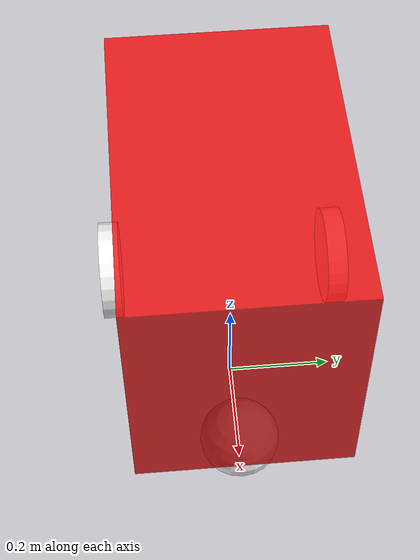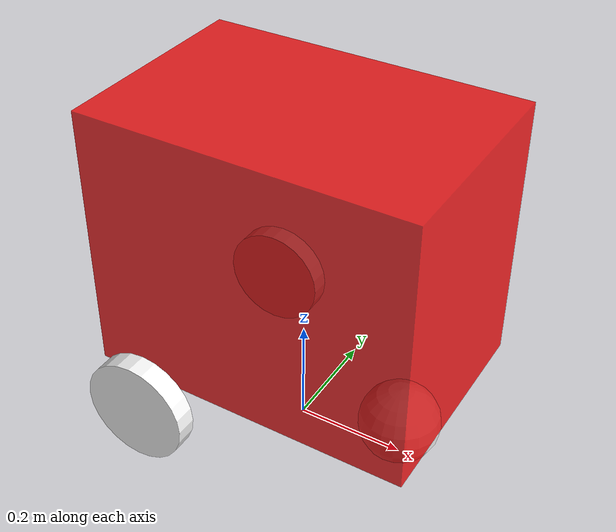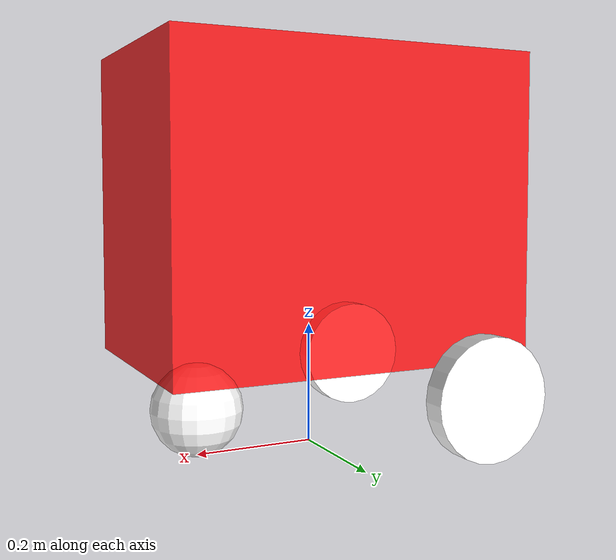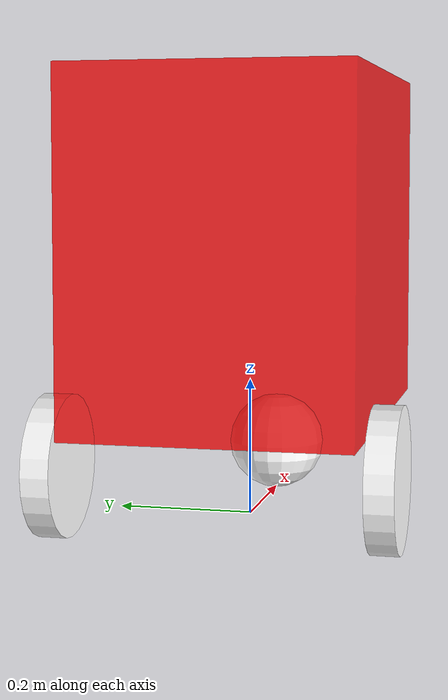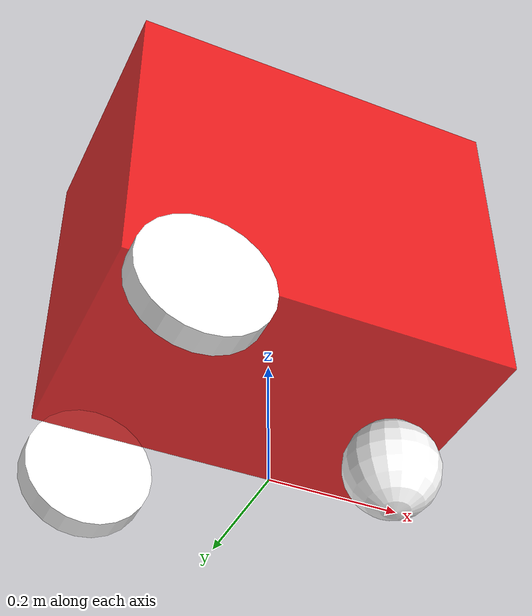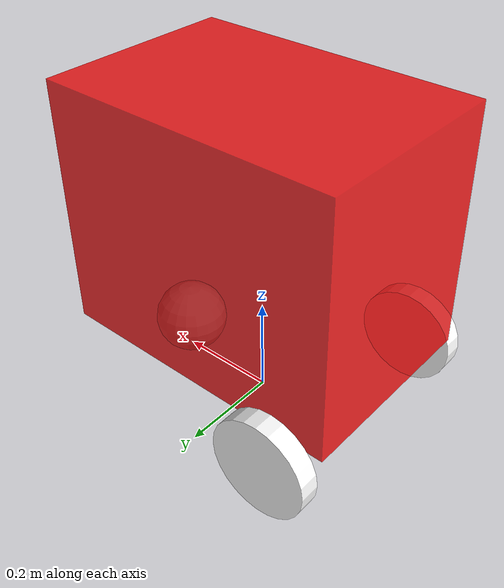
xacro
<?xml version="1.0"?>
<robot xmlns:xacro="http://www.ros.org/wiki/xacro" name="trackbot">

    <xacro:include filename="$(find cartbot)/xacro/robot2/trackbot.gazebo.xacro" />

    <xacro:property name="body_mass" value="15"/>
    <xacro:property name="body_width" value="0.4"/>
    <xacro:property name="body_height" value="0.5"/>
    <xacro:property name="body_length" value="0.6"/>
    <xacro:property name="wheel_gap" value="0.46"/>
    <xacro:property name="wheel_mass" value="1"/>
    <xacro:property name="wheel_radius" value="0.1"/>
    <xacro:property name="wheel_width" value="0.04"/>
    <xacro:property name="ground_clearnace" value="0.15"/>

    <material name="red">
        <color rgba="1.0 0 0.0 0.8"/>
    </material>

    <material name="white">
        <color rgba="1 1 1 1"/>
    </material>

    <xacro:macro name="box_inertia" params="m w h d">
        <inertial>
            <mass value="${m}"/>
            <inertia ixx="${m / 12.0 * (d*d + h*h)}" ixy="0.0" ixz="0.0" iyy="${m / 12.0 * (w*w + h*h)}" iyz="0.0" izz="${m / 12.0 * (w*w + d*d)}"/>
        </inertial>
    </xacro:macro>

    <xacro:macro name="cylinder_inertia" params="m r h">
        <inertial>
            <mass value="${m}"/>
            <inertia ixx="${m*(3*r*r+h*h)/12}" ixy = "0" ixz = "0" iyy="${m*(3*r*r+h*h)/12}" iyz = "0" izz="${m*r*r/2}"/>
        </inertial>
    </xacro:macro>

    <link name='base_footprint2'/>

    <joint name="base_joint2" type="fixed">
        <parent link="base_footprint2"/>
        <child link="body_link2"/>
        <origin xyz="0.0 0.0 ${body_height/2 + ground_clearnace}" rpy="0 0 0"/>
    </joint>

    <link name='body_link2'>
        <xacro:box_inertia m="${body_mass}" w="${body_width}" h="${body_height}" d="${body_length}"/>
        <visual>
            <origin xyz="0.0 0.0 0.0" rpy="0.0 0.0 0.0"/>
            <geometry>
                <box size="${body_length} ${body_width} ${body_height}"/>
            </geometry>
            <material name="red"/>
        </visual>
        <collision>
            <geometry>
                <box size="${body_length} ${body_width} ${body_height}"/>
            </geometry>
        </collision>
    </link>

    <link name='wheel_left_link2'>
        <xacro:cylinder_inertia m="${wheel_mass}" r="${wheel_radius}" h="${wheel_width}"/>
        <visual>
            <origin xyz="0.0 0.0 0.0" rpy="0.0 0.0 0.0"/>
            <geometry>
                <cylinder length="${wheel_width}" radius="${wheel_radius}"/>
            </geometry>
            <material name="white"/>
        </visual>
        <collision>
            <geometry>
                <cylinder length="${wheel_width}" radius="${wheel_radius}"/>
            </geometry>
        </collision>
    </link>

    <joint name="wheel_left_joint2" type="continuous">
        <parent link="body_link2"/>
        <child link="wheel_left_link2"/>
        <origin xyz="-${body_length/2 - wheel_radius} ${wheel_gap/2*1} -${ground_clearnace+body_height/2 - wheel_radius}" rpy="-${pi/2} 0.0 0.0"/>
        <axis xyz="0 0 1"/>
        <limit effort="10000" velocity="1000"/>
        <dynamics damping="1.0" friction="1.0"/>
    </joint>

    <link name='wheel_right_link2'>
        <xacro:cylinder_inertia m="${wheel_mass}" r="${wheel_radius}" h="${wheel_width}"/>
        <visual>
            <origin xyz="0.0 0.0 0.0" rpy="0.0 0.0 0.0"/>
            <geometry>
                <cylinder length="${wheel_width}" radius="${wheel_radius}"/>
            </geometry>
            <material name="white"/>
        </visual>
        <collision>
            <geometry>
                <cylinder length="${wheel_width}" radius="${wheel_radius}"/>
            </geometry>
        </collision>
    </link>

    <joint name="wheel_right_joint2" type="continuous">
        <parent link="body_link2"/>
        <child link="wheel_right_link2"/>
        <origin xyz="-${body_length/2 - wheel_radius} ${wheel_gap/2*-1} -${ground_clearnace+body_height/2 - wheel_radius}" rpy="${pi/2} 0.0 0.0"/>
        <axis xyz="0 0 -1"/>
        <limit effort="10000" velocity="1000"/>
        <dynamics damping="1.0" friction="1.0"/>
    </joint>

    <joint name="caster_joint2" type="fixed">
        <parent link="body_link2"/>
        <child link="caster_wheel_link2"/>
        <origin xyz="0.2 0.0 -${body_height/2 + ground_clearnace/2}" rpy="0.0 0.0 0.0" />
    </joint>

    <link name='caster_wheel_link2'>
        <visual>
            <origin xyz="0.0 0.0 0.0" rpy="0.0 0.0 0.0"/>
            <geometry>
                <sphere radius="${ground_clearnace/2}" />
            </geometry>
            <material name="white"/>
        </visual>
        <collision>
            <geometry>
                <sphere radius="${ground_clearnace/2}" />
            </geometry>
        </collision>
    </link>
</robot>
